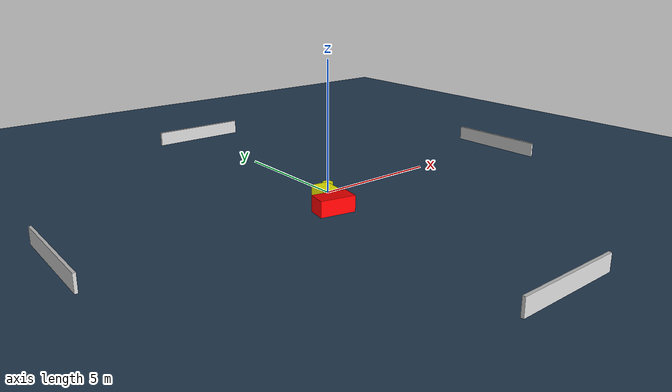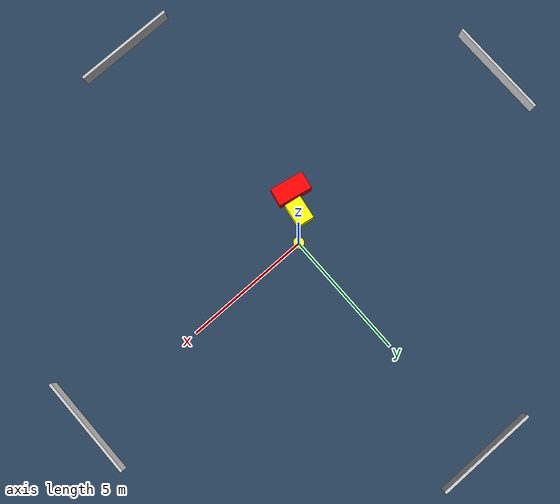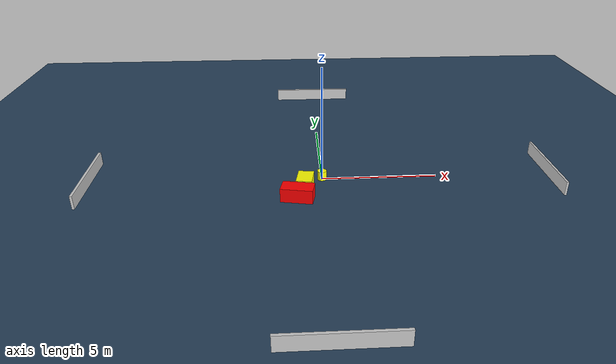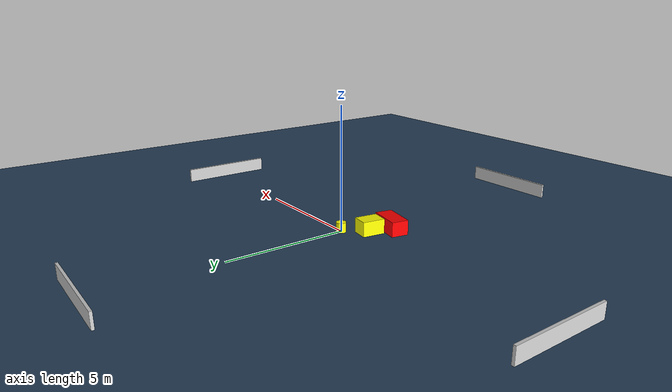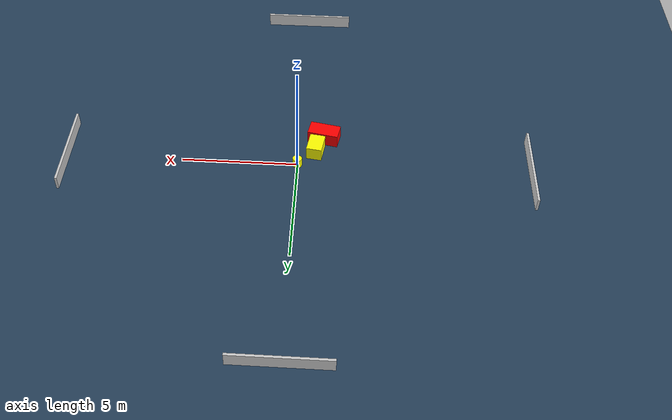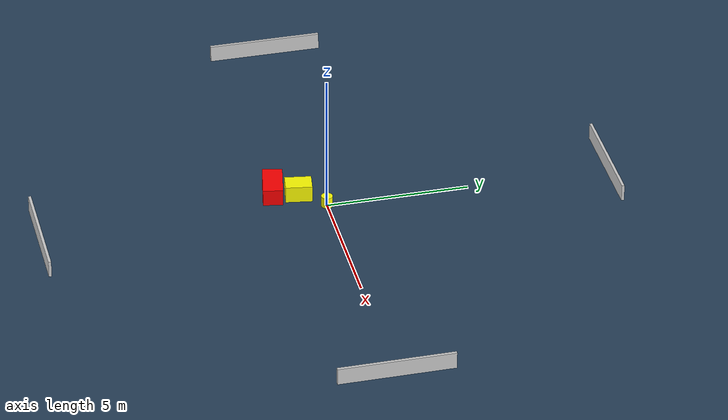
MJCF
<?xml version="1.0" ?>
<mujoco model="generated_environment">
  <option timestep="0.01" integrator="RK4" cone="elliptic"/>
  <default>
    <geom density="1"/>
  </default>
  <asset>
    <texture builtin="gradient" height="3072" name="skybox" rgb1="0.3 0.5 0.7" rgb2="0 0 0" type="skybox" width="512"/>
    <texture builtin="checker" height="300" name="groundplane" rgb1="0.2 0.3 0.4" rgb2="0.1 0.2 0.3" type="2d" width="300"/>
    <material name="groundplane" reflectance="0.2" texrepeat="5 5" texture="groundplane"/>
  </asset>
  <worldbody>
    <light dir="0 0 -1" directional="true" pos="0 0 1.5"/>
    <geom condim="3" friction="0.5 0.005 0.001" material="groundplane" name="floor" pos="0 0 0" size="0 0 0.05" type="plane"/>
    <body name="walls">
      <geom name="wall_1" condim="4" pos="-10.0 0.0 0.3" rgba="0.800000011920929 0.800000011920929 0.800000011920929 1.0" size="0.05 2.0 0.3" type="box"/>
      <geom name="wall_2" condim="4" pos="10.0 0.0 0.3" rgba="0.800000011920929 0.800000011920929 0.800000011920929 1.0" size="0.05 2.0 0.3" type="box"/>
      <geom name="wall_3" condim="4" pos="0.0 -10.0 0.3" rgba="0.800000011920929 0.800000011920929 0.800000011920929 1.0" size="2.0 0.05 0.3" type="box"/>
      <geom name="wall_4" condim="4" pos="0.0 10.0 0.3" rgba="0.800000011920929 0.800000011920929 0.800000011920929 1.0" size="2.0 0.05 0.3" type="box"/>
    </body>
    <body name="robot">
      <joint name="joint_x" type="slide" pos="0 0 0" axis="1 0 0"/>
      <joint name="joint_y" type="slide" pos="0 0 0" axis="0 1 0"/>
      <geom name="robot" type="cylinder" pos="0.0 0.0 0.2" size="0.2 0.2 0.0" mass="5.0" friction="1.0 0.005 0.0001" condim="4" rgba="1.0 1.0 0.0 1.0"/>
    </body>
    <body name="obstacle_1_movable">
      <geom name="obstacle_1_movable" condim="4" pos="-0.7567075934110008 -0.8351883573156469 0.3" euler="0 0 261.2460359590811" friction="0.0 0.005 0.001" rgba="1.0 1.0 0.0 1.0" size="0.4635890374012865 0.33244403187762517 0.3" type="box" mass="0.1"/>
      <joint type="free"/>
    </body>
    <body name="obstacle_2_static">
      <geom name="obstacle_2_static" condim="4" pos="-1.0863084526186817 -1.6730270901846318 0.3" euler="0 0 78.91157993475703" friction="0.0 0.005 0.001" rgba="1.0 0.0 0.0 1.0" size="0.35039054914174517 0.6687988167855672 0.3" type="box"/>
    </body>
  </worldbody>
  <actuator>
    <motor name="actuator_x" joint="joint_x" gear="1" ctrlrange="-1 1"/>
    <motor name="actuator_y" joint="joint_y" gear="1" ctrlrange="-1 1"/>
  </actuator>
</mujoco>
